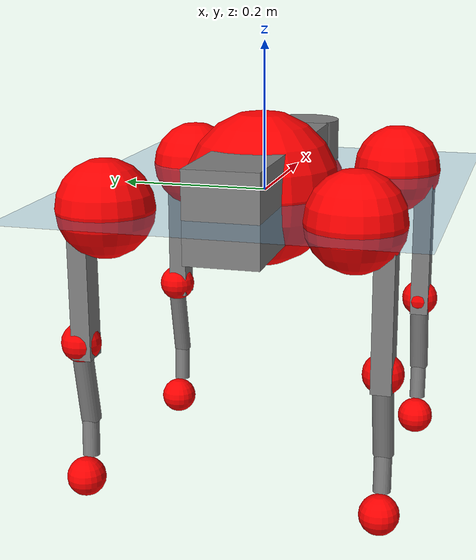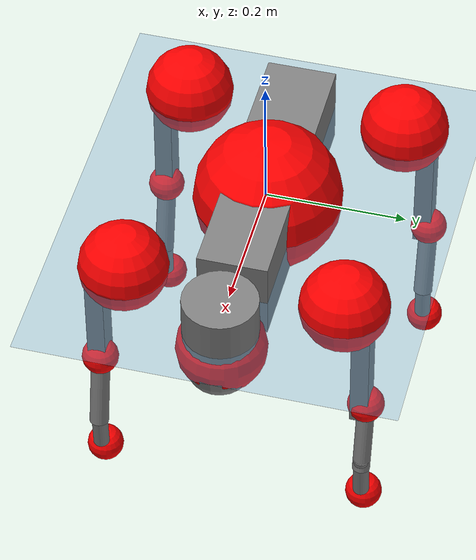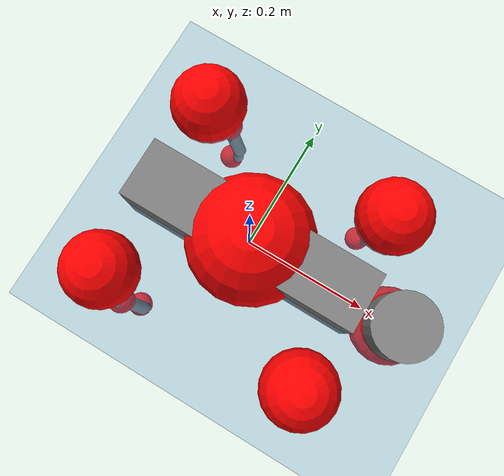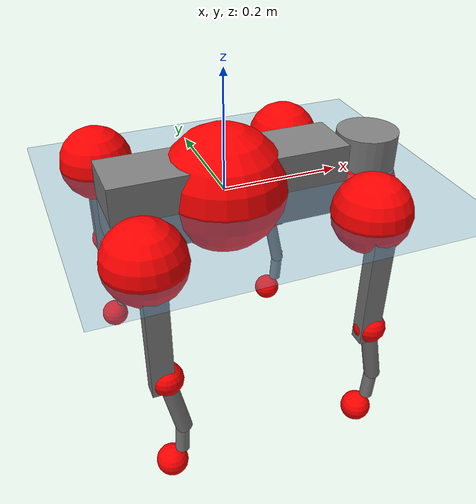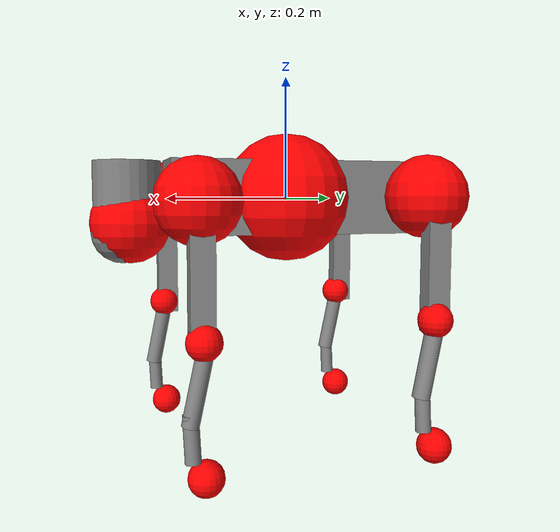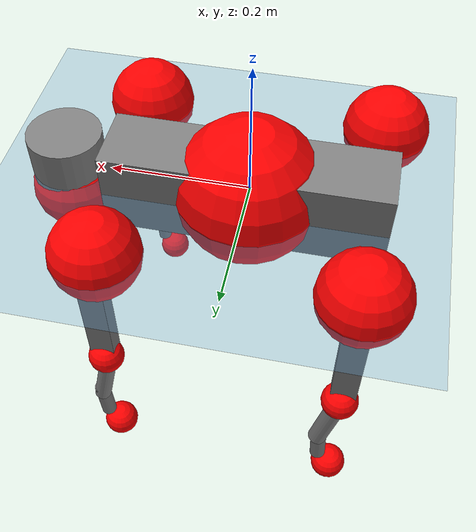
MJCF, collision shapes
<mujoco model="go2">
  <compiler angle="radian" assetdir="assets" balanceinertia="true" inertiafromgeom="false"/>

  <option timestep="0.005" density="1.2" viscosity="2e-05"/>

  <size nkey="1"/>

  <visual>
    <quality shadowsize="8192"/>
    <map shadowclip="0.5"/>
  </visual>

  <default>
    <default class="/">
      <geom contype="0" conaffinity="0" group="1" solref="-1000 -80"/>
      <site size="0.01 0.005 0.005" group="5"/>
      <general forcelimited="true" biastype="affine" gainprm="20" biasprm="0 -20 -0.5"/>
      <default class="go2">
        <joint armature="0.01" damping="0.01" frictionloss="0.2"/>
        <geom condim="1" margin="0.001"/>
        <default class="visual">
          <geom type="mesh" group="2"/>
        </default>
        <default class="collision">
          <geom group="3"/>
          <default class="foot">
            <geom size="0.022 0 0" condim="6" priority="1" friction="0.8 0.02 0.01" solimp="0.015 1 0.022"/>
          </default>
        </default>
        <default class="reward_collision_sphere">
          <geom group="5" rgba="1 0 0 1"/>
        </default>
      </default>
    </default>
  </default>

  <asset>
    <texture type="skybox" colorspace="auto" name="//unnamed_texture_0" builtin="gradient" rgb1="0.95 0.95 0.95" rgb2="0.95 0.95 0.95" width="100" height="600"/>
    <texture type="2d" colorspace="auto" name="texplane" builtin="checker" rgb1="0.345 0.575 0.748" rgb2="0.345 0.575 0.748" markrgb="1 1 1" width="512" height="512"/>
    <material name="MatPlane" class="/" texture="texplane" texuniform="true" texrepeat="2 2" specular="0.9"/>
    <material name="metal" class="/" rgba="0.9 0.95 0.95 1"/>
    <material name="black" class="/" rgba="0 0 0 1"/>
    <material name="white" class="/"/>
    <material name="gray" class="/" rgba="0.671705 0.692426 0.77427 1"/>
    <mesh name="base_0" class="/" file="base_0.obj"/>
    <mesh name="base_1" class="/" file="base_1.obj"/>
    <mesh name="base_2" class="/" file="base_2.obj"/>
    <mesh name="base_3" class="/" file="base_3.obj"/>
    <mesh name="base_4" class="/" file="base_4.obj"/>
    <mesh name="hip_0" class="/" file="hip_0.obj"/>
    <mesh name="hip_1" class="/" file="hip_1.obj"/>
    <mesh name="thigh_0" class="/" file="thigh_0.obj"/>
    <mesh name="thigh_1" class="/" file="thigh_1.obj"/>
    <mesh name="thigh_mirror_0" class="/" file="thigh_mirror_0.obj"/>
    <mesh name="thigh_mirror_1" class="/" file="thigh_mirror_1.obj"/>
    <mesh name="calf_0" class="/" file="calf_0.obj"/>
    <mesh name="calf_1" class="/" file="calf_1.obj"/>
    <mesh name="calf_mirror_0" class="/" file="calf_mirror_0.obj"/>
    <mesh name="calf_mirror_1" class="/" file="calf_mirror_1.obj"/>
    <mesh name="foot" class="/" file="foot.obj"/>
  </asset>

  <worldbody>
    <geom name="floor" class="/" size="100 100 0.125" type="plane" group="0" material="MatPlane"/>
    <light name="toplight_shadow" class="/" pos="0 0 5" dir="0.0990148 0.0990148 -0.990148" type="directional" ambient="0.04 0.04 0.04" diffuse="0.55 0.55 0.55" specular="0.12 0.12 0.12"/>
    <light name="toplight_fill" class="/" pos="0 0 5" dir="0.0990148 0.0990148 -0.990148" type="directional" castshadow="false" ambient="0.04 0.04 0.04" diffuse="0.3 0.3 0.3" specular="0.08 0.08 0.08"/>
    <body name="trunk" childclass="go2" pos="0.000540918 0.0035917 0.00204004" quat="1 7.57643e-06 -5.79967e-06 -3.21437e-06">
      <inertial pos="0.0204529 0.00421198 -0.00442216" quat="0.0230882 0.700879 0.02586 0.712438" mass="8.34419" diaginertia="0.0684924 0.457375 0.0141379"/>
      <joint name="//unnamed_joint_0" type="free" armature="0" damping="0" frictionloss="0"/>
      <geom name="//unnamed_geom_1" class="visual" material="black" mesh="base_0"/>
      <geom name="//unnamed_geom_2" class="visual" material="black" mesh="base_1"/>
      <geom name="//unnamed_geom_3" class="visual" material="black" mesh="base_2"/>
      <geom name="//unnamed_geom_4" class="visual" material="white" mesh="base_3"/>
      <geom name="//unnamed_geom_5" class="visual" material="gray" mesh="base_4"/>
      <geom name="trunk_1" class="collision" size="0.198992 0.0494572 0.0603007" type="box"/>
      <geom name="trunk_2" class="collision" size="0.0528954 0.0476059" pos="0.260709 0 0.00895289" type="cylinder"/>
      <geom name="trunk_3" class="collision" size="0.0497217" pos="0.268027 0 -0.0537173"/>
      <geom name="//unnamed_geom_9" class="reward_collision_sphere" size="0.105791"/>
      <geom name="//unnamed_geom_10" class="reward_collision_sphere" size="0.0634745" pos="0.256135 0 -0.040288"/>
      <site name="imu" pos="-0.0397971 -0.00577105 0.0557722" size="0.0105791"/>
      <camera name="track" pos="0 -2.72733 0" quat="0.707107 0.707107 0 0" mode="trackcom"/>
      <camera name="ego_camera" pos="0.285408 0 0.040288" quat="-0.5 -0.5 0.5 0.5"/>
      <body name="FL_hip" pos="0.174714 0.0557032 -0.0058234" quat="0.999998 0.00113591 -0.000731814 -0.00150988">
        <inertial pos="-0.00692739 0.0030709 -0.000936981" quat="0.488833 0.505823 0.507678 0.497443" mass="0.829227" diaginertia="0.000566248 0.00301445 0.000270989"/>
        <joint name="FL_hip_joint" pos="0 0 0" axis="0.999986 0.00519214 -0.000708633" range="-1.20619 1.03305" armature="0.00988234" damping="0.0265124" frictionloss="0.187333"/>
        <geom name="//unnamed_geom_11" class="visual" material="metal" mesh="hip_0"/>
        <geom name="//unnamed_geom_12" class="visual" material="gray" mesh="hip_1"/>
        <geom name="//unnamed_geom_13" class="collision" size="0.0486638 0.0211582" pos="0 0.109093 0" quat="0.707107 0.707107 0 0" type="cylinder"/>
        <geom name="//unnamed_geom_14" class="reward_collision_sphere" size="0.0634745" pos="0 0.0954566 0"/>
        <body name="FL_thigh" pos="0.000664732 0.122566 -0.00178356" quat="0.999999 0.00080053 -0.000477888 -0.00100068">
          <inertial pos="-0.00612148 -0.0319379 -0.02693" quat="0.842053 0.0873699 -0.0123023 0.532129" mass="1.36511" diaginertia="0.00398335 0.0278667 0.000505661"/>
          <joint name="FL_thigh_joint" pos="0 0 0" axis="0.0127596 0.999819 0.0140808" range="-1.57602 3.36859" armature="0.00837217" damping="0.0210225" frictionloss="0.220043"/>
          <geom name="//unnamed_geom_15" class="visual" material="metal" mesh="thigh_0"/>
          <geom name="//unnamed_geom_16" class="visual" material="gray" mesh="thigh_1"/>
          <geom name="//unnamed_geom_17" class="collision" size="0.112667 0.0129594 0.0179844" pos="0 0 -0.0953483" quat="0.707107 0 0.707107 0" type="box"/>
          <body name="FL_calf" pos="-0.00209127 0.00595426 -0.19143" quat="1 -0.000250212 -0.000230636 0.000181847">
            <inertial pos="0.00367387 -0.000457117 -0.119327" quat="0.709184 0.00351248 -0.00419752 0.705003" mass="0.276159" diaginertia="0.000989143 0.00630906 3.29496e-05"/>
            <joint name="FL_calf_joint" pos="0 0 0" axis="0.00222219 0.999996 0.00182354" range="-2.58329 -0.839799" armature="0.0115689" damping="0.00987834" frictionloss="0.218528"/>
            <geom name="//unnamed_geom_18" class="visual" material="gray" mesh="calf_0"/>
            <geom name="//unnamed_geom_19" class="visual" material="black" mesh="calf_1"/>
            <geom name="FL_calf0" class="collision" size="0.0126949 0.0634745" pos="0.00731815 0 -0.0537173" quat="0.994493 0 -0.104807 0" type="cylinder"/>
            <geom name="//unnamed_geom_21" class="collision" size="0.011637 0.034382" pos="0.0182954 0 -0.132503" quat="0.999688 0 0.0249974 0" type="cylinder"/>
            <geom name="//unnamed_geom_22" class="visual" pos="0 0 -0.190697" quat="1 0 0 0" material="black" mesh="foot"/>
            <geom name="FL_foot" class="foot" size="0.021682" pos="-0.00182954 0 -0.190697"/>
            <geom name="//unnamed_geom_24" class="reward_collision_sphere" size="0.0264477"/>
            <geom name="//unnamed_geom_25" class="reward_collision_sphere" size="0.0264477" pos="-0.00182954 0 -0.190697"/>
            <site name="FL_foot" class="foot" pos="-0.00182954 0 -0.190697" size="0.0105791"/>
          </body>
        </body>
      </body>
      <body name="FR_hip" pos="0.181052 -0.0628606 0.000750218" quat="1 1.62699e-05 -0.000124082 0.000422722">
        <inertial pos="-0.00572934 -0.000562293 0.00148306" quat="0.494107 0.501476 0.504572 0.499787" mass="0.874514" diaginertia="0.000570236 0.00316834 0.000269084"/>
        <joint name="FR_hip_joint" pos="0 0 0" axis="0.999941 0.00391823 -0.0100937" range="-1.04633 1.01367" armature="0.011371" damping="0.0136272" frictionloss="0.222283"/>
        <geom name="//unnamed_geom_26" class="visual" pos="0 4.0803e-09 1.75013e-07" quat="4.63268e-05 1 0 0" material="metal" mesh="hip_0"/>
        <geom name="//unnamed_geom_27" class="visual" pos="0 6.61466e-09 -4.32873e-07" quat="4.63268e-05 1 0 0" material="gray" mesh="hip_1"/>
        <geom name="//unnamed_geom_28" class="collision" size="0.0486638 0.0211582" pos="0 -0.109093 0" quat="0.707107 0.707107 0 0" type="cylinder"/>
        <geom name="//unnamed_geom_29" class="reward_collision_sphere" size="0.0634745" pos="0 -0.0954566 0"/>
        <body name="FR_thigh" pos="-0.00619987 -0.137768 -0.00756621" quat="1 0.00011761 8.67153e-05 -4.6371e-05">
          <inertial pos="-0.00346473 0.0378264 -0.0308175" quat="0.555257 -0.0215876 0.0784968 0.827685" mass="1.24515" diaginertia="0.00369097 0.0260339 0.000473941"/>
          <joint name="FR_thigh_joint" pos="0 0 0" axis="0.00150549 -0.999953 0.00962624" range="-3.36406 1.57444" armature="0.0117222" damping="0.0181505" frictionloss="0.212689"/>
          <geom name="//unnamed_geom_30" class="visual" material="metal" mesh="thigh_mirror_0"/>
          <geom name="//unnamed_geom_31" class="visual" material="gray" mesh="thigh_mirror_1"/>
          <geom name="//unnamed_geom_32" class="collision" size="0.112667 0.0129594 0.0179844" pos="0 0 -0.0953483" quat="0.707107 0 0.707107 0" type="box"/>
          <body name="FR_calf" pos="0.00620691 0.00176623 -0.188822" quat="0.999997 0.00029332 -0.000598305 -0.00234357">
            <inertial pos="0.00646686 0.000830771 -0.12908" quat="0.701636 0.00331151 0.000367652 0.712527" mass="0.294275" diaginertia="0.000982871 0.00686962 3.12027e-05"/>
            <joint name="FR_calf_joint" pos="0 0 0" axis="0.0304078 -0.99936 0.0188287" stiffness="0.0145901" range="0.884672 2.74756" armature="0.00759478" damping="0" frictionloss="0.261561"/>
            <geom name="//unnamed_geom_33" class="visual" material="gray" mesh="calf_mirror_0"/>
            <geom name="//unnamed_geom_34" class="visual" material="black" mesh="calf_mirror_1"/>
            <geom name="FR_calf0" class="collision" size="0.0137528 0.0634745" pos="0.00914769 0 -0.0537173" quat="0.995004 0 -0.0998334 0" type="cylinder"/>
            <geom name="//unnamed_geom_36" class="collision" size="0.011637 0.034382" pos="0.0182954 0 -0.132503" quat="0.999688 0 0.0249974 0" type="cylinder"/>
            <geom name="//unnamed_geom_37" class="visual" pos="0 0 -0.190697" quat="1 0 0 0" material="black" mesh="foot"/>
            <geom name="FR_foot" class="foot" size="0.0224318" pos="-0.00182954 0 -0.190697"/>
            <geom name="//unnamed_geom_39" class="reward_collision_sphere" size="0.0264477"/>
            <geom name="//unnamed_geom_40" class="reward_collision_sphere" size="0.0264477" pos="-0.00182954 0 -0.190697"/>
            <site name="FR_foot" class="foot" pos="-0.00182954 0 -0.190697" size="0.0105791"/>
          </body>
        </body>
      </body>
      <body name="RL_hip" pos="-0.174952 0.0613315 0.00112908" quat="1 -0.000278276 0.000127113 0.000169958">
        <inertial pos="0.0042563 0.00690823 -0.0011557" quat="0.505251 0.496021 0.493168 0.50544" mass="0.821199" diaginertia="0.000563468 0.00282834 0.000278441"/>
        <joint name="RL_hip_joint" pos="0 0 0" axis="-0.99998 0.00562104 0.00302845" range="-1.00765 1.03969" armature="0.0100898" damping="0.00628997" frictionloss="0.234549"/>
        <geom name="//unnamed_geom_41" class="visual" pos="-1.69704e-10 0 -3.32659e-08" quat="4.63268e-05 0 1 0" material="metal" mesh="hip_0"/>
        <geom name="//unnamed_geom_42" class="visual" pos="-2.75111e-10 0 -2.95021e-08" quat="4.63268e-05 0 1 0" material="gray" mesh="hip_1"/>
        <geom name="//unnamed_geom_43" class="collision" size="0.0486638 0.0211582" pos="0 0.109093 0" quat="0.707107 0.707107 0 0" type="cylinder"/>
        <geom name="//unnamed_geom_44" class="reward_collision_sphere" size="0.0634745" pos="0 0.0954566 0"/>
        <body name="RL_thigh" pos="0.00198036 0.130822 0.00679837" quat="0.999999 0.000367006 -0.00087466 0.000525105">
          <inertial pos="-0.00380997 -0.0324194 -0.0229287" quat="0.830013 0.0795484 -0.0162579 0.551803" mass="1.24343" diaginertia="0.00376521 0.0279398 0.000497442"/>
          <joint name="RL_thigh_joint" pos="0 0 0" axis="-0.0187535 0.9997 0.0157427" range="-0.453055 4.50443" armature="0.0102465" damping="0.0284975" frictionloss="0.190202"/>
          <geom name="//unnamed_geom_45" class="visual" material="metal" mesh="thigh_0"/>
          <geom name="//unnamed_geom_46" class="visual" material="gray" mesh="thigh_1"/>
          <geom name="//unnamed_geom_47" class="collision" size="0.112667 0.0129594 0.0179844" pos="0 0 -0.0953483" quat="0.707107 0 0.707107 0" type="box"/>
          <body name="RL_calf" pos="0.00285259 0.00764879 -0.190256" quat="1 0.000704249 4.33024e-05 -0.000492857">
            <inertial pos="0.00365837 -0.00110841 -0.128933" quat="0.710396 -0.00194645 -0.0114327 0.703707" mass="0.274539" diaginertia="0.000877893 0.0066359 2.97564e-05"/>
            <joint name="RL_calf_joint" pos="0 0 0" axis="0.0124622 0.999902 0.00643193" range="-2.86777 -0.769569" armature="0.0109861" damping="0.0186539" frictionloss="0.2083"/>
            <geom name="//unnamed_geom_48" class="visual" material="gray" mesh="calf_0"/>
            <geom name="//unnamed_geom_49" class="visual" material="black" mesh="calf_1"/>
            <geom name="RL_calf0" class="collision" size="0.0137528 0.0634745" pos="0.00914769 0 -0.0537173" quat="0.995004 0 -0.0998334 0" type="cylinder"/>
            <geom name="//unnamed_geom_51" class="collision" size="0.011637 0.034382" pos="0.0182954 0 -0.132503" quat="0.999688 0 0.0249974 0" type="cylinder"/>
            <geom name="//unnamed_geom_52" class="visual" pos="0 0 -0.190697" quat="1 0 0 0" material="black" mesh="foot"/>
            <geom name="RL_foot" class="foot" size="0.0227862" pos="-0.00182954 0 -0.190697"/>
            <geom name="//unnamed_geom_54" class="reward_collision_sphere" size="0.0264477"/>
            <geom name="//unnamed_geom_55" class="reward_collision_sphere" size="0.0264477" pos="-0.00182954 0 -0.190697"/>
            <site name="RL_foot" class="foot" pos="-0.00182954 0 -0.190697" size="0.0105791"/>
          </body>
        </body>
      </body>
      <body name="RR_hip" pos="-0.175987 -0.0653644 0.00360554" quat="0.999997 0.000672038 -0.00096678 -0.00208602">
        <inertial pos="0.00652419 -0.00726213 0.00200087" quat="0.492288 0.49568 0.50362 0.508253" mass="0.804212" diaginertia="0.000534532 0.00279492 0.000251687"/>
        <joint name="RR_hip_joint" pos="0 0 0" axis="-0.999633 0.0217405 -0.0161655" range="-1.09321 1.16407" armature="0.0104804" damping="0.00775507" frictionloss="0.234267"/>
        <geom name="//unnamed_geom_56" class="visual" pos="1.85245e-10 4.0803e-09 -2.08279e-07" quat="2.14617e-09 4.63268e-05 4.63268e-05 -1" material="metal" mesh="hip_0"/>
        <geom name="//unnamed_geom_57" class="visual" pos="2.36671e-10 6.61466e-09 4.03371e-07" quat="2.14617e-09 4.63268e-05 4.63268e-05 -1" material="gray" mesh="hip_1"/>
        <geom name="//unnamed_geom_58" class="collision" size="0.0486638 0.0211582" pos="0 -0.109093 0" quat="0.707107 0.707107 0 0" type="cylinder"/>
        <geom name="//unnamed_geom_59" class="reward_collision_sphere" size="0.0634745" pos="0 -0.0954566 0"/>
        <body name="RR_thigh" pos="-0.000249486 -0.133204 -0.00207648" quat="0.999997 -0.000806827 -0.00150083 -0.00200605">
          <inertial pos="-0.00291183 0.0360573 -0.0307935" quat="0.552565 -0.0169521 0.0750986 0.829906" mass="1.41444" diaginertia="0.00397839 0.0284246 0.000513925"/>
          <joint name="RR_thigh_joint" pos="0 0 0" axis="0.0040259 -0.999416 0.0339318" range="-4.49375 0.50267" armature="0.00981386" damping="0.019071" frictionloss="0.234945"/>
          <geom name="//unnamed_geom_60" class="visual" material="metal" mesh="thigh_mirror_0"/>
          <geom name="//unnamed_geom_61" class="visual" material="gray" mesh="thigh_mirror_1"/>
          <geom name="//unnamed_geom_62" class="collision" size="0.112667 0.0129594 0.0179844" pos="0 0 -0.0953483" quat="0.707107 0 0.707107 0" type="box"/>
          <body name="RR_calf" pos="0.00855487 0.00131276 -0.190129" quat="1 -7.01795e-05 -4.96847e-05 3.77403e-05">
            <inertial pos="-0.00227124 0.00105706 -0.128401" quat="0.702128 -0.00309496 -0.00100984 0.712043" mass="0.28021" diaginertia="0.000887977 0.00678894 3.14487e-05"/>
            <joint name="RR_calf_joint" pos="0 0 0" axis="0.00477707 -0.999424 0.0336042" stiffness="0.0057496" range="0.924947 2.60253" armature="0.0136618" damping="0" frictionloss="0.211323"/>
            <geom name="//unnamed_geom_63" class="visual" material="gray" mesh="calf_mirror_0"/>
            <geom name="//unnamed_geom_64" class="visual" material="black" mesh="calf_mirror_1"/>
            <geom name="RR_calf0" class="collision" size="0.0137528 0.0634745" pos="0.00914769 0 -0.0537173" quat="0.995004 0 -0.0998334 0" type="cylinder"/>
            <geom name="//unnamed_geom_66" class="collision" size="0.011637 0.034382" pos="0.0182954 0 -0.132503" quat="0.999688 0 0.0249974 0" type="cylinder"/>
            <geom name="//unnamed_geom_67" class="visual" pos="0 0 -0.190697" quat="1 0 0 0" material="black" mesh="foot"/>
            <geom name="RR_foot" class="foot" size="0.0246439" pos="-0.00182954 0 -0.190697"/>
            <geom name="//unnamed_geom_69" class="reward_collision_sphere" size="0.0264477"/>
            <geom name="//unnamed_geom_70" class="reward_collision_sphere" size="0.0264477" pos="-0.00182954 0 -0.190697"/>
            <site name="RR_foot" class="foot" pos="-0.00182954 0 -0.190697" size="0.0105791"/>
          </body>
        </body>
      </body>
    </body>
  </worldbody>

  <contact>
    <pair class="/" geom1="floor" geom2="FL_foot" name="//unnamed_contact_0"/>
    <pair class="/" geom1="floor" geom2="FR_foot" name="//unnamed_contact_1"/>
    <pair class="/" geom1="floor" geom2="RL_foot" name="//unnamed_contact_2"/>
    <pair class="/" geom1="floor" geom2="RR_foot" name="//unnamed_contact_3"/>
  </contact>

  <actuator>
    <general name="FL_hip" class="/" joint="FL_hip_joint" forcerange="-17.7697 17.7697" gainprm="17.9175" biasprm="0 -17.9175 -0.542503"/>
    <general name="FL_thigh" class="/" joint="FL_thigh_joint" forcerange="-27.2044 27.2044" gainprm="17.9175" biasprm="0 -17.9175 -0.542503"/>
    <general name="FL_calf" class="/" joint="FL_calf_joint" forcerange="-45.4447 45.4447" gainprm="17.9175" biasprm="0 -17.9175 -0.542503"/>
    <general name="FR_hip" class="/" joint="FR_hip_joint" forcerange="-19.2401 19.2401" gainprm="17.9175" biasprm="0 -17.9175 -0.542503"/>
    <general name="FR_thigh" class="/" joint="FR_thigh_joint" forcerange="-19.2029 19.2029" gainprm="17.9175" biasprm="0 -17.9175 -0.542503"/>
    <general name="FR_calf" class="/" joint="FR_calf_joint" forcerange="-43.8335 43.8335" gainprm="17.9175" biasprm="0 -17.9175 -0.542503"/>
    <general name="RL_hip" class="/" joint="RL_hip_joint" forcerange="-23.2407 23.2407" gainprm="17.9175" biasprm="0 -17.9175 -0.542503"/>
    <general name="RL_thigh" class="/" joint="RL_thigh_joint" forcerange="-27.3806 27.3806" gainprm="17.9175" biasprm="0 -17.9175 -0.542503"/>
    <general name="RL_calf" class="/" joint="RL_calf_joint" forcerange="-50.4035 50.4035" gainprm="17.9175" biasprm="0 -17.9175 -0.542503"/>
    <general name="RR_hip" class="/" joint="RR_hip_joint" forcerange="-31.6195 31.6195" gainprm="17.9175" biasprm="0 -17.9175 -0.542503"/>
    <general name="RR_thigh" class="/" joint="RR_thigh_joint" forcerange="-23.0002 23.0002" gainprm="17.9175" biasprm="0 -17.9175 -0.542503"/>
    <general name="RR_calf" class="/" joint="RR_calf_joint" forcerange="-47.0765 47.0765" gainprm="17.9175" biasprm="0 -17.9175 -0.542503"/>
  </actuator>

  <sensor>
    <gyro site="imu" name="imu_angular_velocity"/>
    <velocimeter site="imu" name="imu_linear_velocity"/>
    <framelinvel objtype="site" objname="FL_foot" name="FL_foot_global_linear_velocity"/>
    <framelinvel objtype="site" objname="FR_foot" name="FR_foot_global_linear_velocity"/>
    <framelinvel objtype="site" objname="RL_foot" name="RL_foot_global_linear_velocity"/>
    <framelinvel objtype="site" objname="RR_foot" name="RR_foot_global_linear_velocity"/>
  </sensor>

  <keyframe>
    <key name="home" qpos="0 0 0.325 1 0 0 0 0.1 0.8 -1.5 -0.1 -0.8 1.5 -0.1 0.8 -1.5 0.1 -0.8 1.5"/>
  </keyframe>
</mujoco>
